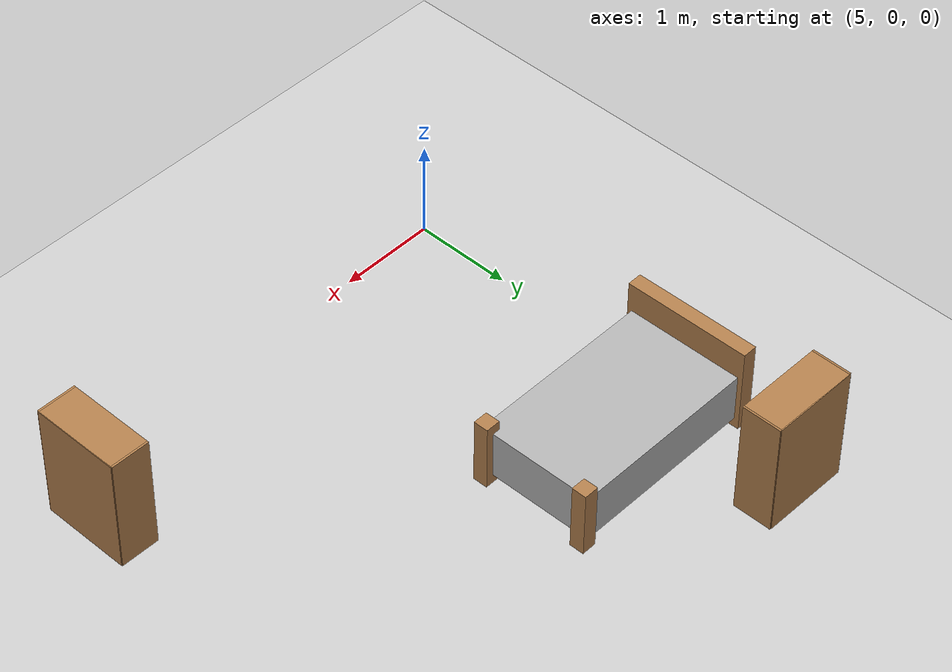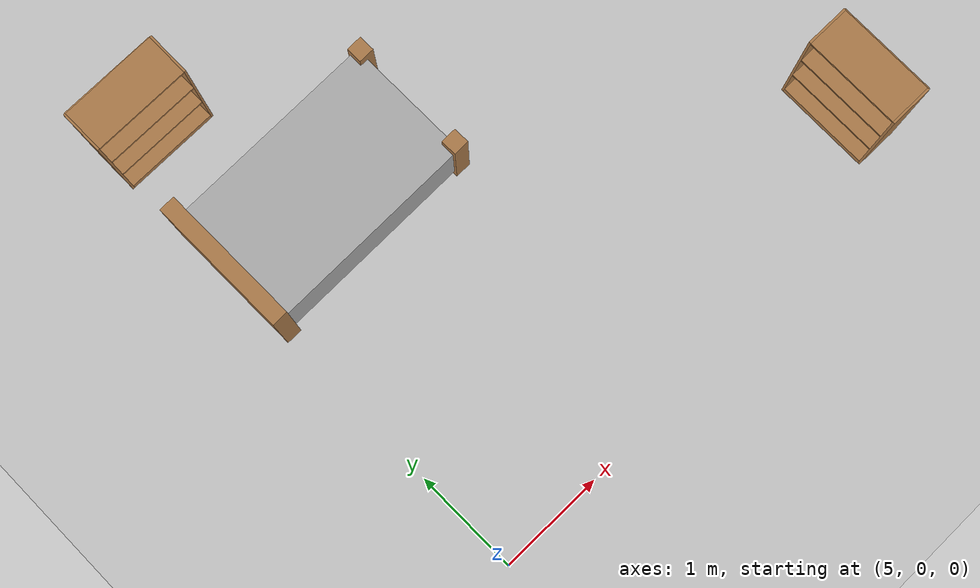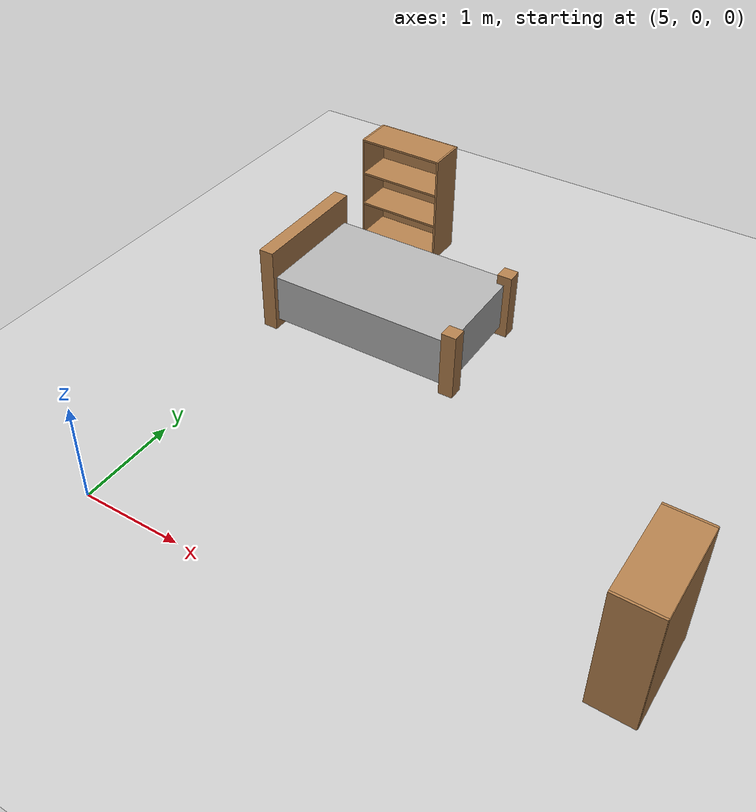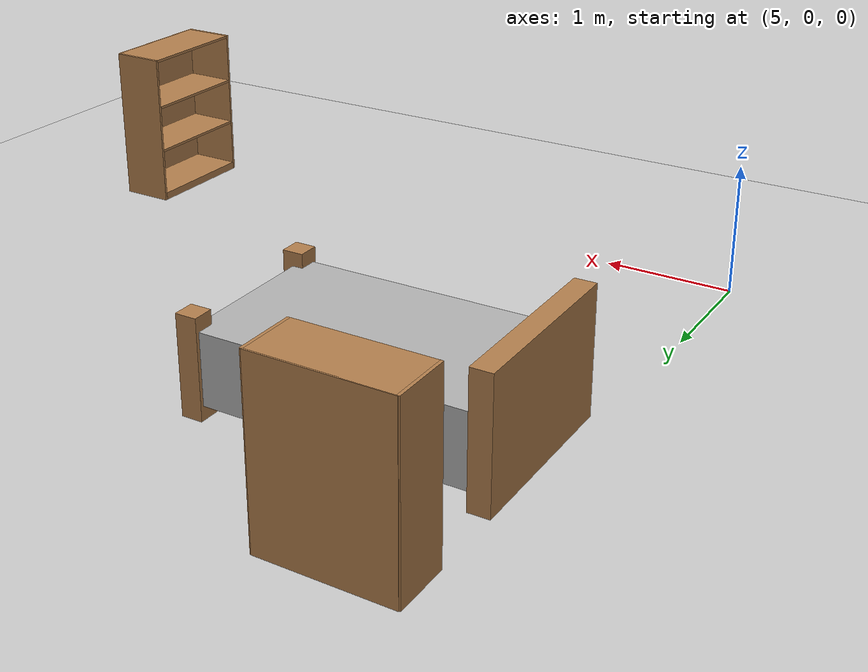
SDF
<sdf version="1.6">
 <world name="default">
  <model name="ground_plane">
   <static>1</static>
   <link name="link">
    <collision name="collision">
     <geometry><plane><normal>0 0 1</normal><size>100 100</size></plane></geometry>
     <surface><friction><ode><mu>100</mu><mu2>50</mu2></ode></friction></surface>
    </collision>
    <visual name="visual">
     <cast_shadows>0</cast_shadows>
     <geometry><plane><normal>0 0 1</normal><size>100 100</size></plane></geometry>
     <material>
      <script><uri>file://media/materials/scripts/gazebo.material</uri><name>Gazebo/Grey</name></script>
     </material>
    </visual>
   </link>
  </model>
  <model name="bookshelf_clone_1">
   <static>1</static>
   <link name="link">
    <inertial><mass>1</mass></inertial>
    <collision name="back">
     <pose>0 0.005 0.6 0 -0 0</pose>
     <geometry><box><size>0.9 0.01 1.2</size></box></geometry>
    </collision>
    <visual name="visual1">
     <pose>0 0.005 0.6 0 -0 0</pose>
     <geometry><box><size>0.9 0.01 1.2</size></box></geometry>
     <material>
      <script><uri>file://media/materials/scripts/gazebo.material</uri><name>Gazebo/Wood</name></script>
     </material>
    </visual>
    <collision name="left_side">
     <pose>0.45 -0.195 0.6 0 -0 0</pose>
     <geometry><box><size>0.02 0.4 1.2</size></box></geometry>
    </collision>
    <visual name="visual2">
     <pose>0.45 -0.195 0.6 0 -0 0</pose>
     <geometry><box><size>0.02 0.4 1.2</size></box></geometry>
     <material>
      <script><uri>file://media/materials/scripts/gazebo.material</uri><name>Gazebo/Wood</name></script>
     </material>
    </visual>
    <collision name="right_side">
     <pose>-0.45 -0.195 0.6 0 -0 0</pose>
     <geometry><box><size>0.02 0.4 1.2</size></box></geometry>
    </collision>
    <visual name="visual3">
     <pose>-0.45 -0.195 0.6 0 -0 0</pose>
     <geometry><box><size>0.02 0.4 1.2</size></box></geometry>
     <material>
      <script><uri>file://media/materials/scripts/gazebo.material</uri><name>Gazebo/Wood</name></script>
     </material>
    </visual>
    <collision name="bottom">
     <pose>0 -0.195 0.03 0 -0 0</pose>
     <geometry><box><size>0.88 0.4 0.06</size></box></geometry>
    </collision>
    <visual name="visual4">
     <pose>0 -0.195 0.03 0 -0 0</pose>
     <geometry><box><size>0.88 0.4 0.06</size></box></geometry>
     <material>
      <script><uri>file://media/materials/scripts/gazebo.material</uri><name>Gazebo/Wood</name></script>
     </material>
    </visual>
    <collision name="top">
     <pose>0 -0.195 1.19 0 -0 0</pose>
     <geometry><box><size>0.88 0.4 0.02</size></box></geometry>
    </collision>
    <visual name="visual5">
     <pose>0 -0.195 1.19 0 -0 0</pose>
     <geometry><box><size>0.88 0.4 0.02</size></box></geometry>
     <material>
      <script><uri>file://media/materials/scripts/gazebo.material</uri><name>Gazebo/Wood</name></script>
     </material>
    </visual>
    <collision name="low_shelf">
     <pose>0 -0.195 0.43 0 -0 0</pose>
     <geometry><box><size>0.88 0.4 0.02</size></box></geometry>
    </collision>
    <visual name="visual6">
     <pose>0 -0.195 0.43 0 -0 0</pose>
     <geometry><box><size>0.88 0.4 0.02</size></box></geometry>
     <material>
      <script><uri>file://media/materials/scripts/gazebo.material</uri><name>Gazebo/Wood</name></script>
     </material>
    </visual>
    <collision name="high_shelf">
     <pose>0 -0.195 0.8 0 -0 0</pose>
     <geometry><box><size>0.88 0.4 0.02</size></box></geometry>
    </collision>
    <visual name="visual7">
     <pose>0 -0.195 0.8 0 -0 0</pose>
     <geometry><box><size>0.88 0.4 0.02</size></box></geometry>
     <material>
      <script><uri>file://media/materials/scripts/gazebo.material</uri><name>Gazebo/Wood</name></script>
     </material>
    </visual>
   </link>
   <pose>5.38847 4.85222 0.241845 0 -0 0</pose>
  </model>
  <model name="bad_1">
   <link name="link_0">
    <pose>-0.25 0 0.35 0 -0 0</pose>
    <inertial>
     <mass>1</mass>
     <inertia>
      <ixx>0.166667</ixx>
      <ixy>0</ixy>
      <ixz>0</ixz>
      <iyy>0.166667</iyy>
      <iyz>0</iyz>
      <izz>0.166667</izz>
     </inertia>
    </inertial>
    <visual name="visual">
     <geometry><box><size>2 1.2 0.5</size></box></geometry>
     <material>
      <lighting>1</lighting>
      <script><uri>file://media/materials/scripts/gazebo.material</uri><name>Gazebo/PioneerBody</name></script>
      <ambient>0.3 0.3 0.3 1</ambient>
      <diffuse>0.7 0.7 0.7 1</diffuse>
      <specular>0.01 0.01 0.01 1</specular>
      <emissive>0 0 0 1</emissive>
      <shader type="vertex"><normal_map>__default__</normal_map></shader>
     </material>
    </visual>
    <collision name="collision">
     <geometry><box><size>2 1.2 0.5</size></box></geometry>
     <surface>
      <friction>
       <ode><mu>1</mu><mu2>1</mu2><fdir1>0 0 0</fdir1><slip1>0</slip1><slip2>0</slip2></ode>
       <torsional>
        <coefficient>1</coefficient>
        <patch_radius>0</patch_radius>
        <surface_radius>0</surface_radius>
        <use_patch_radius>1</use_patch_radius>
        <ode><slip>0</slip></ode>
       </torsional>
      </friction>
      <bounce><restitution_coefficient>0</restitution_coefficient><threshold>1e+06</threshold></bounce>
      <contact>
       <collide_without_contact>0</collide_without_contact>
       <collide_without_contact_bitmask>1</collide_without_contact_bitmask>
       <collide_bitmask>1</collide_bitmask>
       <ode>
        <soft_cfm>0</soft_cfm>
        <soft_erp>0.2</soft_erp>
        <kp>1e+13</kp>
        <kd>1</kd>
        <max_vel>0.01</max_vel>
        <min_depth>0</min_depth>
       </ode>
       <bullet>
        <split_impulse>1</split_impulse>
        <split_impulse_penetration_threshold>-0.01</split_impulse_penetration_threshold>
        <soft_cfm>0</soft_cfm>
        <soft_erp>0.2</soft_erp>
        <kp>1e+13</kp>
        <kd>1</kd>
       </bullet>
      </contact>
     </surface>
    </collision>
   </link>
   <link name="link_1">
    <pose>-1.25 0 0.45 0 -0 0</pose>
    <inertial>
     <mass>1</mass>
     <inertia>
      <ixx>0.166667</ixx>
      <ixy>0</ixy>
      <ixz>0</ixz>
      <iyy>0.166667</iyy>
      <iyz>0</iyz>
      <izz>0.166667</izz>
     </inertia>
    </inertial>
    <visual name="visual">
     <geometry><box><size>0.15 1.3 0.9</size></box></geometry>
     <material>
      <lighting>1</lighting>
      <script><uri>file://media/materials/scripts/gazebo.material</uri><name>Gazebo/Wood</name></script>
      <ambient>0.3 0.3 0.3 1</ambient>
      <diffuse>0.7 0.7 0.7 1</diffuse>
      <specular>0.01 0.01 0.01 1</specular>
      <emissive>0 0 0 1</emissive>
      <shader type="vertex"><normal_map>__default__</normal_map></shader>
     </material>
    </visual>
    <collision name="collision">
     <geometry><box><size>0.15 1.3 0.9</size></box></geometry>
     <surface>
      <friction>
       <ode><mu>1</mu><mu2>1</mu2><fdir1>0 0 0</fdir1><slip1>0</slip1><slip2>0</slip2></ode>
       <torsional>
        <coefficient>1</coefficient>
        <patch_radius>0</patch_radius>
        <surface_radius>0</surface_radius>
        <use_patch_radius>1</use_patch_radius>
        <ode><slip>0</slip></ode>
       </torsional>
      </friction>
      <bounce><restitution_coefficient>0</restitution_coefficient><threshold>1e+06</threshold></bounce>
      <contact>
       <collide_without_contact>0</collide_without_contact>
       <collide_without_contact_bitmask>1</collide_without_contact_bitmask>
       <collide_bitmask>1</collide_bitmask>
       <ode>
        <soft_cfm>0</soft_cfm>
        <soft_erp>0.2</soft_erp>
        <kp>1e+13</kp>
        <kd>1</kd>
        <max_vel>0.01</max_vel>
        <min_depth>0</min_depth>
       </ode>
       <bullet>
        <split_impulse>1</split_impulse>
        <split_impulse_penetration_threshold>-0.01</split_impulse_penetration_threshold>
        <soft_cfm>0</soft_cfm>
        <soft_erp>0.2</soft_erp>
        <kp>1e+13</kp>
        <kd>1</kd>
       </bullet>
      </contact>
     </surface>
    </collision>
   </link>
   <link name="link_1_clone">
    <pose>0.75 -0.55 0.35 0 -0 0</pose>
    <inertial>
     <mass>1</mass>
     <inertia>
      <ixx>0.166667</ixx>
      <ixy>0</ixy>
      <ixz>0</ixz>
      <iyy>0.166667</iyy>
      <iyz>0</iyz>
      <izz>0.166667</izz>
     </inertia>
    </inertial>
    <visual name="visual">
     <geometry><box><size>0.15 0.15 0.7</size></box></geometry>
     <material>
      <lighting>1</lighting>
      <script><uri>file://media/materials/scripts/gazebo.material</uri><name>Gazebo/Wood</name></script>
      <ambient>0.3 0.3 0.3 1</ambient>
      <diffuse>0.7 0.7 0.7 1</diffuse>
      <specular>0.01 0.01 0.01 1</specular>
      <emissive>0 0 0 1</emissive>
      <shader type="vertex"><normal_map>__default__</normal_map></shader>
     </material>
    </visual>
    <collision name="collision">
     <geometry><box><size>0.15 0.15 0.7</size></box></geometry>
     <surface>
      <friction>
       <ode><mu>1</mu><mu2>1</mu2><fdir1>0 0 0</fdir1><slip1>0</slip1><slip2>0</slip2></ode>
       <torsional>
        <coefficient>1</coefficient>
        <patch_radius>0</patch_radius>
        <surface_radius>0</surface_radius>
        <use_patch_radius>1</use_patch_radius>
        <ode><slip>0</slip></ode>
       </torsional>
      </friction>
      <bounce><restitution_coefficient>0</restitution_coefficient><threshold>1e+06</threshold></bounce>
      <contact>
       <collide_without_contact>0</collide_without_contact>
       <collide_without_contact_bitmask>1</collide_without_contact_bitmask>
       <collide_bitmask>1</collide_bitmask>
       <ode>
        <soft_cfm>0</soft_cfm>
        <soft_erp>0.2</soft_erp>
        <kp>1e+13</kp>
        <kd>1</kd>
        <max_vel>0.01</max_vel>
        <min_depth>0</min_depth>
       </ode>
       <bullet>
        <split_impulse>1</split_impulse>
        <split_impulse_penetration_threshold>-0.01</split_impulse_penetration_threshold>
        <soft_cfm>0</soft_cfm>
        <soft_erp>0.2</soft_erp>
        <kp>1e+13</kp>
        <kd>1</kd>
       </bullet>
      </contact>
     </surface>
    </collision>
   </link>
   <link name="link_1_clone_clone">
    <pose>0.75 0.55 0.35 0 -0 0</pose>
    <inertial>
     <mass>1</mass>
     <inertia>
      <ixx>0.166667</ixx>
      <ixy>0</ixy>
      <ixz>0</ixz>
      <iyy>0.166667</iyy>
      <iyz>0</iyz>
      <izz>0.166667</izz>
     </inertia>
    </inertial>
    <visual name="visual">
     <geometry><box><size>0.15 0.15 0.7</size></box></geometry>
     <material>
      <lighting>1</lighting>
      <script><uri>file://media/materials/scripts/gazebo.material</uri><name>Gazebo/Wood</name></script>
      <ambient>0.3 0.3 0.3 1</ambient>
      <diffuse>0.7 0.7 0.7 1</diffuse>
      <specular>0.01 0.01 0.01 1</specular>
      <emissive>0 0 0 1</emissive>
      <shader type="vertex"><normal_map>__default__</normal_map></shader>
     </material>
    </visual>
    <collision name="collision">
     <geometry><box><size>0.15 0.15 0.7</size></box></geometry>
     <surface>
      <friction>
       <ode><mu>1</mu><mu2>1</mu2><fdir1>0 0 0</fdir1><slip1>0</slip1><slip2>0</slip2></ode>
       <torsional>
        <coefficient>1</coefficient>
        <patch_radius>0</patch_radius>
        <surface_radius>0</surface_radius>
        <use_patch_radius>1</use_patch_radius>
        <ode><slip>0</slip></ode>
       </torsional>
      </friction>
      <bounce><restitution_coefficient>0</restitution_coefficient><threshold>1e+06</threshold></bounce>
      <contact>
       <collide_without_contact>0</collide_without_contact>
       <collide_without_contact_bitmask>1</collide_without_contact_bitmask>
       <collide_bitmask>1</collide_bitmask>
       <ode>
        <soft_cfm>0</soft_cfm>
        <soft_erp>0.2</soft_erp>
        <kp>1e+13</kp>
        <kd>1</kd>
        <max_vel>0.01</max_vel>
        <min_depth>0</min_depth>
       </ode>
       <bullet>
        <split_impulse>1</split_impulse>
        <split_impulse_penetration_threshold>-0.01</split_impulse_penetration_threshold>
        <soft_cfm>0</soft_cfm>
        <soft_erp>0.2</soft_erp>
        <kp>1e+13</kp>
        <kd>1</kd>
       </bullet>
      </contact>
     </surface>
    </collision>
   </link>
   <joint name="link_0_JOINT_0" type="fixed">
    <parent>link_0</parent>
    <child>link_1</child>
    <physics>
     <ode><limit><cfm>0</cfm><erp>0.2</erp></limit><suspension><cfm>0</cfm><erp>0.2</erp></suspension></ode>
    </physics>
   </joint>
   <joint name="link_0_JOINT_1" type="fixed">
    <parent>link_0</parent>
    <child>link_1_clone</child>
    <physics>
     <ode><limit><cfm>0</cfm><erp>0.2</erp></limit><suspension><cfm>0</cfm><erp>0.2</erp></suspension></ode>
    </physics>
   </joint>
   <joint name="link_0_JOINT_2" type="fixed">
    <parent>link_0</parent>
    <child>link_1_clone_clone</child>
    <physics>
     <ode><limit><cfm>0</cfm><erp>0.2</erp></limit><suspension><cfm>0</cfm><erp>0.2</erp></suspension></ode>
    </physics>
   </joint>
   <static>0</static>
   <pose>6.28812 3.2494 0.2 0 -0 0.008585</pose>
  </model>
  <model name="bookshelf_clone_2">
   <static>1</static>
   <link name="link">
    <inertial><mass>1</mass></inertial>
    <collision name="back">
     <pose>0 0.005 0.6 0 -0 0</pose>
     <geometry><box><size>0.9 0.01 1.2</size></box></geometry>
    </collision>
    <visual name="visual1">
     <pose>0 0.005 0.6 0 -0 0</pose>
     <geometry><box><size>0.9 0.01 1.2</size></box></geometry>
     <material>
      <script><uri>file://media/materials/scripts/gazebo.material</uri><name>Gazebo/Wood</name></script>
     </material>
    </visual>
    <collision name="left_side">
     <pose>0.45 -0.195 0.6 0 -0 0</pose>
     <geometry><box><size>0.02 0.4 1.2</size></box></geometry>
    </collision>
    <visual name="visual2">
     <pose>0.45 -0.195 0.6 0 -0 0</pose>
     <geometry><box><size>0.02 0.4 1.2</size></box></geometry>
     <material>
      <script><uri>file://media/materials/scripts/gazebo.material</uri><name>Gazebo/Wood</name></script>
     </material>
    </visual>
    <collision name="right_side">
     <pose>-0.45 -0.195 0.6 0 -0 0</pose>
     <geometry><box><size>0.02 0.4 1.2</size></box></geometry>
    </collision>
    <visual name="visual3">
     <pose>-0.45 -0.195 0.6 0 -0 0</pose>
     <geometry><box><size>0.02 0.4 1.2</size></box></geometry>
     <material>
      <script><uri>file://media/materials/scripts/gazebo.material</uri><name>Gazebo/Wood</name></script>
     </material>
    </visual>
    <collision name="bottom">
     <pose>0 -0.195 0.03 0 -0 0</pose>
     <geometry><box><size>0.88 0.4 0.06</size></box></geometry>
    </collision>
    <visual name="visual4">
     <pose>0 -0.195 0.03 0 -0 0</pose>
     <geometry><box><size>0.88 0.4 0.06</size></box></geometry>
     <material>
      <script><uri>file://media/materials/scripts/gazebo.material</uri><name>Gazebo/Wood</name></script>
     </material>
    </visual>
    <collision name="top">
     <pose>0 -0.195 1.19 0 -0 0</pose>
     <geometry><box><size>0.88 0.4 0.02</size></box></geometry>
    </collision>
    <visual name="visual5">
     <pose>0 -0.195 1.19 0 -0 0</pose>
     <geometry><box><size>0.88 0.4 0.02</size></box></geometry>
     <material>
      <script><uri>file://media/materials/scripts/gazebo.material</uri><name>Gazebo/Wood</name></script>
     </material>
    </visual>
    <collision name="low_shelf">
     <pose>0 -0.195 0.43 0 -0 0</pose>
     <geometry><box><size>0.88 0.4 0.02</size></box></geometry>
    </collision>
    <visual name="visual6">
     <pose>0 -0.195 0.43 0 -0 0</pose>
     <geometry><box><size>0.88 0.4 0.02</size></box></geometry>
     <material>
      <script><uri>file://media/materials/scripts/gazebo.material</uri><name>Gazebo/Wood</name></script>
     </material>
    </visual>
    <collision name="high_shelf">
     <pose>0 -0.195 0.8 0 -0 0</pose>
     <geometry><box><size>0.88 0.4 0.02</size></box></geometry>
    </collision>
    <visual name="visual7">
     <pose>0 -0.195 0.8 0 -0 0</pose>
     <geometry><box><size>0.88 0.4 0.02</size></box></geometry>
     <material>
      <script><uri>file://media/materials/scripts/gazebo.material</uri><name>Gazebo/Wood</name></script>
     </material>
    </visual>
   </link>
   <pose>9.87137 0.765362 0.236251 0 0 -1.57835</pose>
  </model>
 </world>
</sdf>
